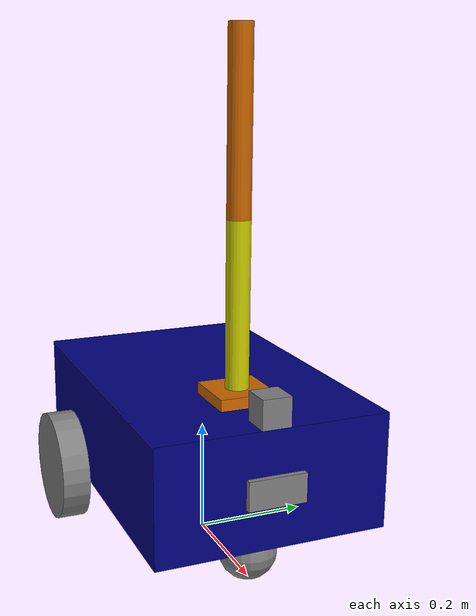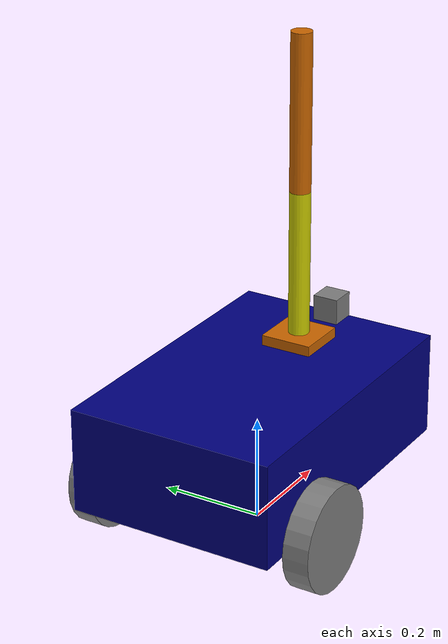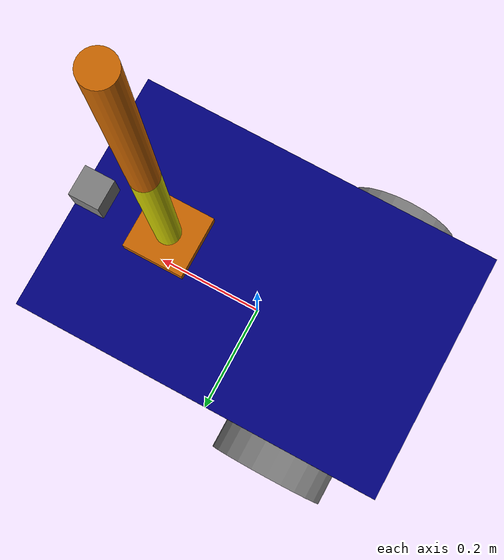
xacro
<?xml version="1.0"?>
<robot name="my_robot" xmlns:xacro="http://www.ros.org/wiki/xacro">

    <xacro:include filename="common_properties.xacro" />
    <xacro:include filename="mobile_base.xacro" />
    <xacro:include filename="mobile_base_gazebo.xacro" />
    <xacro:include filename="arm.xacro" />
    <xacro:include filename="arm.gazebo.xacro" />
    <xacro:include filename="camera.xacro" />
    <xacro:include filename="imu.xacro" />
    <xacro:include filename="lidar.xacro" />

    <joint name="mobile_base_arm_joint" type="fixed">
        <parent link="base_link" />
        <child link="arm_base_link" />
        <origin xyz="${base_length/4.0} 0 ${base_height}" rpy="0 0 0" />
    </joint>

</robot>

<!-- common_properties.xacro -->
<robot xmlns:xacro="http://www.ros.org/wiki/xacro" >

    <material name="blue">
        <color rgba="0 0 0.5 1" />
    </material>

    <material name="grey">
        <color rgba="0.5 0.5 0.5 1" />
    </material>

    <material name="orange">
        <color rgba="0.8 0.4 0 1" />
    </material>

    <material name="yellow">
        <color rgba="0.8 0.8 0 1" />
    </material>

    <xacro:macro name="box_inertia" params="m x y z o_xyz o_rpy">
        <inertial>
            <mass value="${m}" />
            <origin xyz="${o_xyz}" rpy="${o_rpy}" />
            <inertia ixx="${(m/12) * (y*y + z*z)}" ixy="0" ixz="0"
                     iyy="${(m/12) * (x*x + z*z)}" iyz="0"
                     izz="${(m/12) * (y*y + x*x)}" />
        </inertial>
    </xacro:macro>

    <xacro:macro name="cylinder_inertia" params="m r l o_xyz o_rpy">
        <inertial>
            <mass value="${m}" />
            <origin xyz="${o_xyz}" rpy="${o_rpy}" />
            <inertia ixx="${(m/12) * (3*r*r + l*l)}" ixy="0" ixz="0"
                     iyy="${(m/12) * (3*r*r + l*l)}" iyz="0"
                     izz="${(m/2) * (r*r)}" />
        </inertial>
    </xacro:macro>

    <xacro:macro name="sphere_inertia" params="m r o_xyz o_rpy">
        <inertial>
            <mass value="${m}" />
            <origin xyz="${o_xyz}" rpy="${o_rpy}" />
            <inertia ixx="${(2/5) * m * (r*r)}" ixy="0" ixz="0"
                     iyy="${(2/5) * m * (r*r)}" iyz="0"
                     izz="${(2/5) * m * (r*r)}" />
        </inertial>
    </xacro:macro>

</robot>

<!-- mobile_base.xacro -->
<robot xmlns:xacro="http://www.ros.org/wiki/xacro" >

    <xacro:property name="base_length" value="0.6" />
    <xacro:property name="base_width" value="0.4" />
    <xacro:property name="base_height" value="0.2" />
    <xacro:property name="wheel_radius" value="0.1" />
    <xacro:property name="wheel_length" value="0.05" />

    <link name="base_footprint" />

    <link name="base_link">
        <visual>
            <geometry>
                <box size="${base_length} ${base_width} ${base_height}" />
            </geometry>
            <origin xyz="0 0 ${base_height / 2.0}" rpy="0 0 0" />
            <material name="blue" />
        </visual>

        <collision>
            <geometry>
                <box size="${base_length} ${base_width} ${base_height}" />
            </geometry>
            <origin xyz="0 0 ${base_height / 2.0}" rpy="0 0 0" />
        </collision>

        <xacro:box_inertia m="5.0" x="${base_length}" y="${base_width}" z="${base_height}"
                           o_xyz="0 0 ${base_height / 2.0}" o_rpy="0 0 0" />
    </link>

    <xacro:macro name="wheel_link" params="prefix">
        <link name="${prefix}_wheel_link">
            <visual>
                <geometry>
                    <cylinder radius="${wheel_radius}" length="${wheel_length}" />
                </geometry>
                <origin xyz="0 0 0" rpy="${pi / 2.0} 0 0" />
                <material name="grey" />
            </visual>

            <collision>
                <geometry>
                    <sphere radius="${wheel_radius}" />
                </geometry>
                <origin xyz="0 0 0" rpy="0 0 0" />
            </collision>

            <xacro:cylinder_inertia m="1.0" r="${wheel_radius}" l="${wheel_length}"
                                    o_xyz="0 0 0" o_rpy="${pi / 2.0} 0 0" />
        </link>
    </xacro:macro>

    <xacro:wheel_link prefix="right" />
    <xacro:wheel_link prefix="left" />

    <link name="caster_wheel_link">
        <visual>
            <geometry>
                <sphere radius="${wheel_radius / 2.0}" />
            </geometry>
            <origin xyz="0 0 0" rpy="0 0 0" />
            <material name="grey" />
        </visual>

        <collision>
            <geometry>
                <sphere radius="${wheel_radius / 2.0}" />
            </geometry>
            <origin xyz="0 0 0" rpy="0 0 0" />
        </collision>

        <xacro:sphere_inertia m="0.5" r="${wheel_radius / 2.0}"
                              o_xyz="0 0 0" o_rpy="0 0 0" />
    </link>

    <joint name="base_joint" type="fixed">
        <parent link="base_footprint" />
        <child link="base_link" />
        <origin xyz="0 0 ${wheel_radius}" rpy="0 0 0"/>
    </joint>

    <joint name="base_right_wheel_joint" type="continuous">
        <parent link="base_link" />
        <child link="right_wheel_link" />
        <origin xyz="${-base_length / 4.0} ${-(base_width + wheel_length) / 2.0} 0" rpy="0 0 0" />
        <axis xyz="0 1 0" />
    </joint>

    <joint name="base_left_wheel_joint" type="continuous">
        <parent link="base_link" />
        <child link="left_wheel_link" />
        <origin xyz="${-base_length / 4.0} ${(base_width + wheel_length) / 2.0} 0" rpy="0 0 0" />
        <axis xyz="0 1 0" />
    </joint>

    <joint name="base_caster_wheel_joint" type="fixed">
        <parent link="base_link" />
        <child link="caster_wheel_link" />
        <origin xyz="${base_length / 3.0} 0 ${-wheel_radius / 2.0}" rpy="0 0 0" />
    </joint>

</robot>

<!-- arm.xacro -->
<robot xmlns:xacro="http://www.ros.org/wiki/xacro" >

    <xacro:property name="arm_base_length" value="0.1" />
    <xacro:property name="arm_base_width" value="0.1" />
    <xacro:property name="arm_base_height" value="0.02" />
    <xacro:property name="forearm_radius" value="0.02" />
    <xacro:property name="forearm_length" value="0.3" />
    <xacro:property name="hand_length" value="0.3" />
    <xacro:property name="hand_radius" value="0.02" />

    <link name="arm_base_link">
        <visual>
            <geometry>
                <box size="${arm_base_length} ${arm_base_width} ${arm_base_height}" />
            </geometry>
            <origin xyz="0 0 ${arm_base_height / 2.0}" rpy="0 0 0" />
            <material name="orange" />
        </visual>

        <collision>
            <geometry>
                <box size="${arm_base_length} ${arm_base_width} ${arm_base_height}" />
            </geometry>
            <origin xyz="0 0 ${arm_base_height / 2.0}" rpy="0 0 0" />
        </collision>

        <xacro:box_inertia m="0.5" x="${arm_base_length}" y="${arm_base_width}" z="${arm_base_height}"
                           o_xyz="0 0 ${arm_base_height / 2.0}" o_rpy="0 0 0" />
    </link>

    <link name="forearm_link">
        <visual>
            <geometry>
                <cylinder radius="${forearm_radius}" length="${forearm_length}" />
            </geometry>
            <origin xyz="0 0 ${forearm_length / 2.0}" rpy="0 0 0" />
            <material name="yellow" />
        </visual>

        <collision>
            <geometry>
                <cylinder radius="${forearm_radius}" length="${forearm_length}" />
            </geometry>
            <origin xyz="0 0 ${forearm_length / 2.0}" rpy="0 0 0" />
        </collision>

        <xacro:cylinder_inertia m="0.3" r="${forearm_radius}" l="${forearm_length}"
                                o_xyz="0 0 ${forearm_length / 2.0}" o_rpy="0 0 0" />
    </link>

    <link name="hand_link">
        <visual>
            <geometry>
                <cylinder radius="${hand_radius}" length="${hand_length}" />
            </geometry>
            <origin xyz="0 0 ${hand_length / 2.0}" rpy="0 0 0" />
            <material name="orange" />
        </visual>

        <collision>
            <geometry>
                <cylinder radius="${hand_radius}" length="${hand_length}" />
            </geometry>
            <origin xyz="0 0 ${hand_length / 2.0}" rpy="0 0 0" />
        </collision>

        <xacro:cylinder_inertia m="0.3" r="${hand_radius}" l="${hand_length}"
                                o_xyz="0 0 ${hand_length / 2.0}" o_rpy="0 0 0" />
    </link>

    <joint name="arm_base_forearm_joint" type="revolute">
        <parent link="arm_base_link" />
        <child link="forearm_link" />
        <origin xyz="0 0 0" rpy="0 0 0" />
        <axis xyz="0 1 0" />
        <limit lower="0" upper="${pi / 2}" effort="100" velocity="100"/>
        <dynamics damping="0.3" friction="0.3"/>
    </joint>

    <joint name="forearm_hand_joint" type="revolute">
        <parent link="forearm_link" />
        <child link="hand_link" />
        <origin xyz="0 0 ${forearm_length}" rpy="0 0 0" />
        <axis xyz="0 1 0" />
        <limit lower="0" upper="${pi / 2}" effort="100" velocity="100"/>
        <dynamics damping="0.3" friction="0.3"/>
    </joint>

</robot>

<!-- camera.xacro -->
<robot xmlns:xacro="http://www.ros.org/wiki/xacro" >

    <xacro:property name="camera_length" value="0.01" />
    <xacro:property name="camera_width" value="0.1" />
    <xacro:property name="camera_height" value="0.05" />

    <link name="camera_link">
        <visual>
            <geometry>
                <box size="${camera_length} ${camera_width} ${camera_height}" />
            </geometry>
            <material name="grey" />
        </visual>
        <collision>
            <geometry>
                <box size="${camera_length} ${camera_width} ${camera_height}" />
            </geometry>
        </collision>
        <xacro:box_inertia m="0.1" x="${camera_length}" y="${camera_width}" z="${camera_height}"
                           o_xyz="0 0 0" o_rpy="0 0 0" />
    </link>

    <joint name="base_camera_joint" type="fixed">
        <parent link="base_link" />
        <child link="camera_link" />
        <origin xyz="${(base_length + camera_length)/ 2.0} 0 ${base_height / 2.0}" rpy="0 0 0" />
    </joint>

    <gazebo reference="camera_link">
        <sensor name="camera" type="camera">
            <camera>
                <horizontal_fov>1.3962634</horizontal_fov>
                <image>
                    <width>640</width>
                    <height>480</height>
                    <format>R8G8B8</format>
                </image>
                <clip>
                    <near>0.1</near>
                    <far>15</far>
                </clip>
                <noise>
                    <type>gaussian</type>
                    <mean>0.0</mean>
                    <stddev>0.007</stddev>
                </noise>
                <optical_frame_id>camera_link</optical_frame_id>
                <camera_info_topic>camera/camera_info</camera_info_topic>
            </camera>
            <always_on>1</always_on>
            <update_rate>20</update_rate>
            <visualize>true</visualize>
            <topic>camera/image_raw</topic>
        </sensor>
    </gazebo>

</robot>

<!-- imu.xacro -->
<robot xmlns:xacro="http://www.ros.org/wiki/xacro" >

    <link name="imu_link" />

    <gazebo reference="imu_link">
        <gravity>true</gravity>
        <sensor name="imu_sensor" type="imu">
            <always_on>true</always_on>
            <update_rate>100.0</update_rate>
            <visualize>true</visualize>
            <topic>imu</topic>
        </sensor>
    </gazebo>

    <joint name="base_imu_joint" type="fixed">
        <parent link="base_link" />
        <child link="imu_link" />
        <origin xyz="0 0 0" rpy="0 0 0" />
    </joint>

</robot>

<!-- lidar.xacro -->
<robot xmlns:xacro="http://www.ros.org/wiki/xacro" >

    <xacro:property name="lidar_length" value="0.05" />
    <xacro:property name="lidar_width" value="0.05" />
    <xacro:property name="lidar_height" value="0.05" />

    <link name="lidar_link">
        <visual>
            <geometry>
                <box size="${lidar_length} ${lidar_width} ${lidar_height}" />
            </geometry>
            <material name="grey" />
        </visual>
        <collision>
            <geometry>
                <box size="${lidar_length} ${lidar_width} ${lidar_height}" />
            </geometry>
        </collision>
        <xacro:box_inertia m="0.1" x="${lidar_length}" y="${lidar_width}" z="${lidar_height}"
                           o_xyz="0 0 0" o_rpy="0 0 0" />
    </link>

    <joint name="base_lidar_joint" type="fixed">
        <parent link="base_link" />
        <child link="lidar_link" />
        <origin xyz="${(base_length/2) - (lidar_length/2)} 0 ${base_height + (lidar_height/2.0)}" rpy="0 0 0" />
    </joint>

    <gazebo reference="lidar_link">
        <sensor name="laser_sensor" type="gpu_ray">
            <pose> 0 0 0 0 0 0 </pose>
            <always_on>true</always_on>
            <visualize>true</visualize>
            <update_rate>10</update_rate>
            <topic>lidar_scan</topic>
            <lidar>
                <scan>
                    <horizontal>
                    <samples>720</samples>
                    <resolution>1</resolution>
                    <min_angle>-3.14</min_angle>
                    <max_angle>3.14</max_angle>
                    </horizontal>
                </scan>
                <range>
                    <min>0.05</min>
                    <max>10.0</max>
                    <resolution>0.01</resolution>
                </range>
                <noise>
                    <type>gaussian</type>
                    <mean>0.0</mean>
                    <stddev>0.01</stddev>
                </noise>
            </lidar>
            <always_on>1</always_on>
            <visualize>true</visualize>
        </sensor>
    </gazebo>

</robot>
